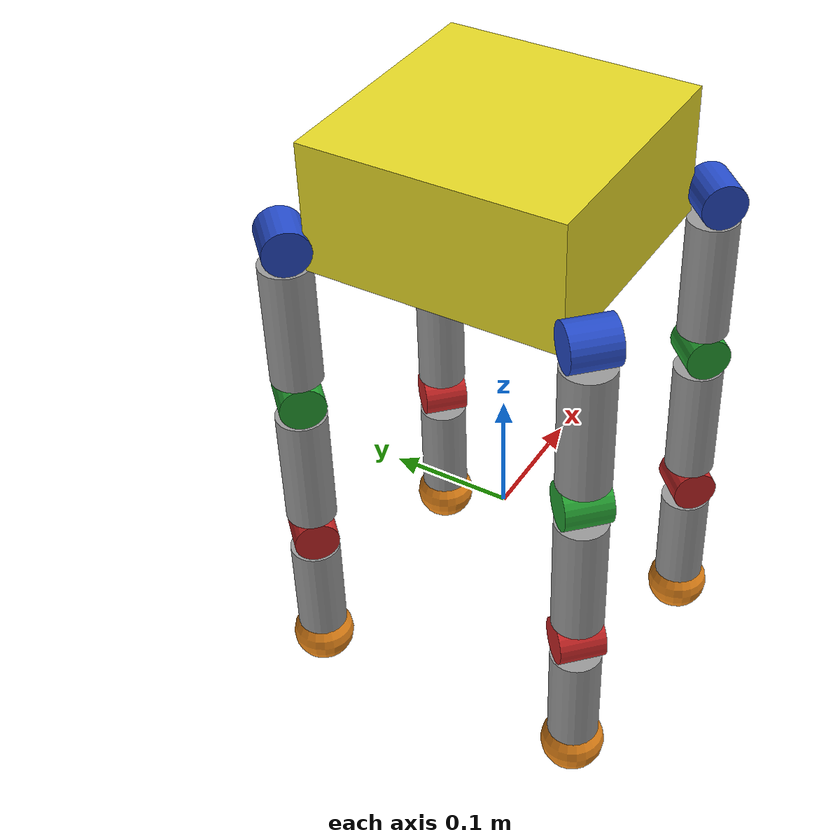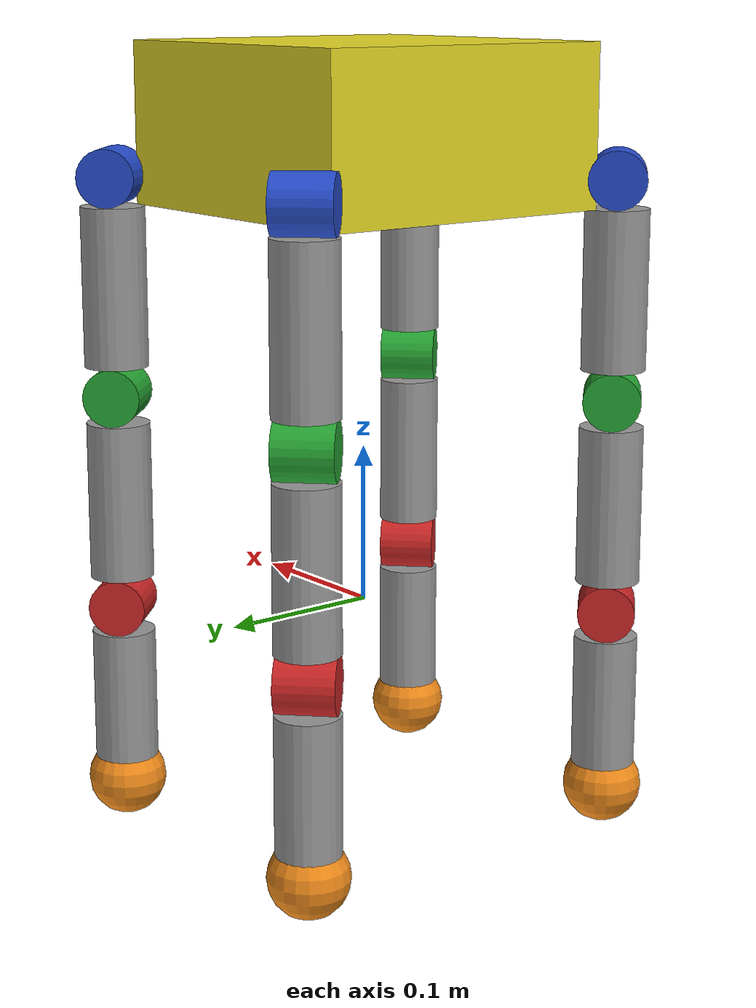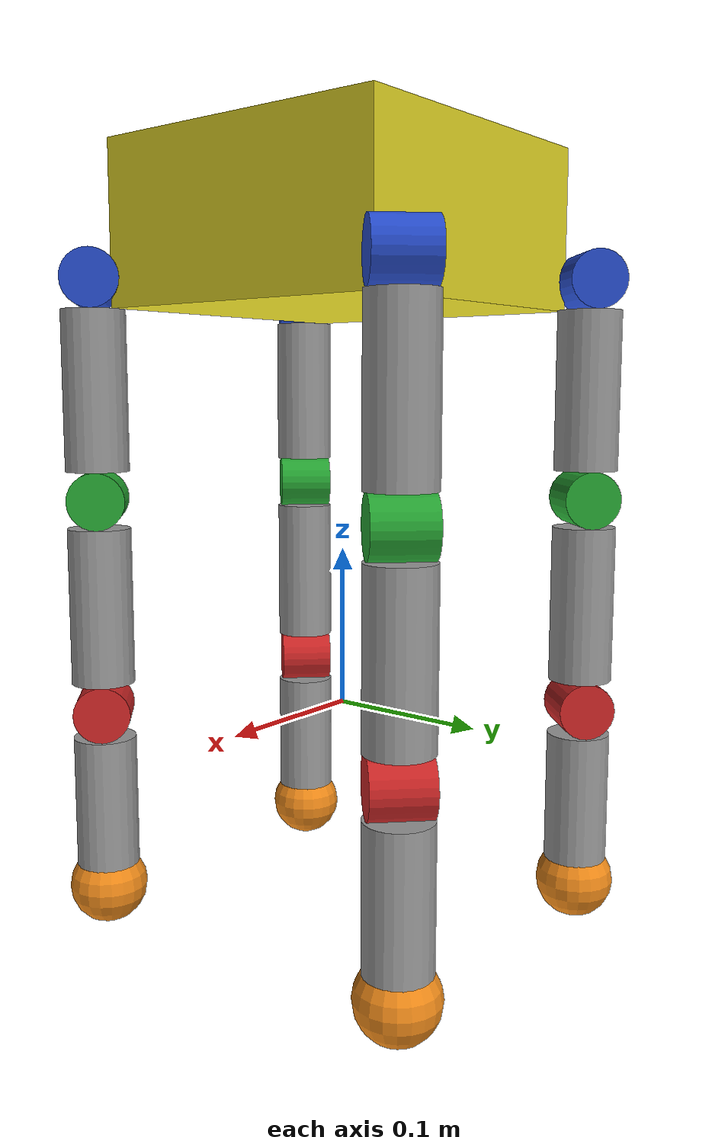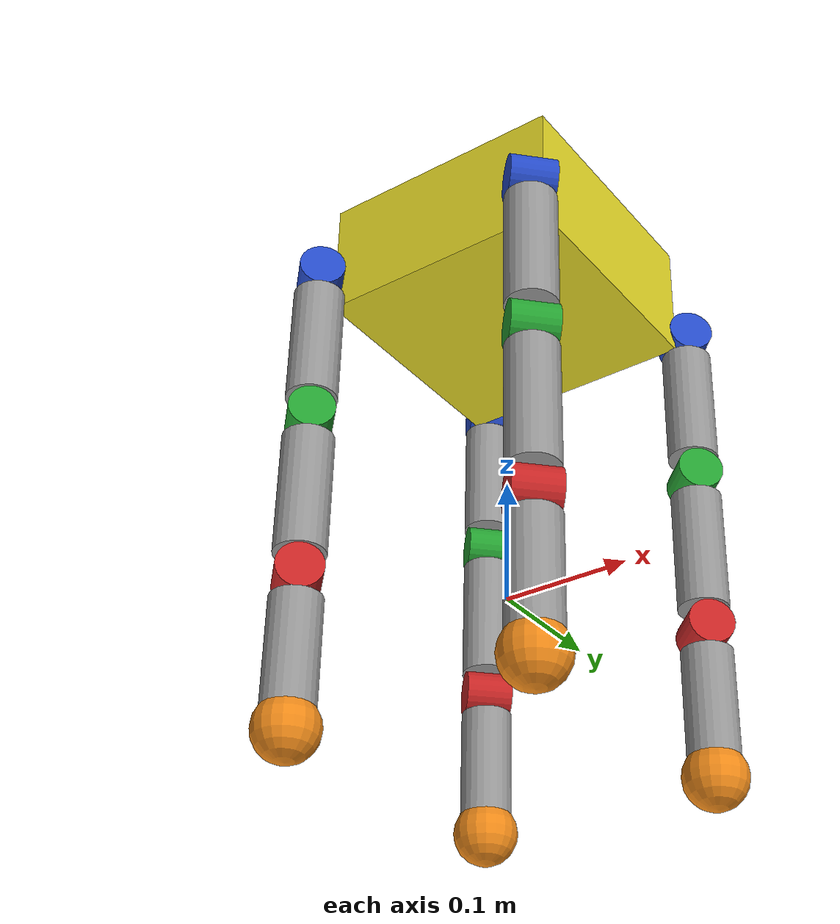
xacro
<?xml version="1.0"?>
<robot name="crawler" xmlns:xacro="http://ros.org/wiki/xacro">

  <!-- ======= Parameters ======= -->

  <!-- Trunk dimensions -->
  <xacro:property name="body_x" value="0.20"/>
  <xacro:property name="body_y" value="0.20"/>
  <xacro:property name="body_z" value="0.10"/>

  <!-- Leg geometry -->
  <xacro:property name="joint_len"  value="0.036"/>   <!-- hip cylinder length -->
  <xacro:property name="joint_rad"  value="0.018"/>  <!-- hip cylinder radius -->

  <xacro:property name="link_1_len" value="0.10"/>
  <xacro:property name="link_1_rad" value="0.020"/>

  <xacro:property name="link_2_len" value="0.10"/>
  <xacro:property name="link_2_rad" value="0.020"/>

  <xacro:property name="link_3_len" value="0.10"/>
  <xacro:property name="link_3_rad" value="0.020"/>

  <xacro:property name="foot_rad" value="0.025"/>

  <!-- Mounting offsets -->
    <xacro:property name="joint_clear_y" value="${joint_rad}"/>   <!-- move hip outside trunk side -->
  <xacro:property name="joint_drop_z"  value="${joint_rad}"/>   <!-- move hip below trunk -->

  <!-- Knee joint lateral offset (outward) -->
    <xacro:property name="knee_clear_y" value="0.05"/>
  <!-- Knee joint fore/aft offset (to mimic side-mounted joint brackets as in example) -->
    <xacro:property name="knee_fwd_x" value="0.02"/>

  <!-- Simple masses -->
  <xacro:property name="m_trunk" value="1.0"/>
  <xacro:property name="m_joint"   value="0.25"/>
  <xacro:property name="m_link_1" value="0.35"/>
  <xacro:property name="m_link_2" value="0.25"/>
  <xacro:property name="m_link_3" value="0.25"/>
  <xacro:property name="m_foot"  value="0.05"/>

  <!-- Convenience -->
  <xacro:macro name="inertial_box" params="m x y z">
    <inertial>
      <origin xyz="0 0 0" rpy="0 0 0"/>
      <mass value="${m}"/>
      <!-- crude diagonal inertia, good enough for sim bringup -->
      <inertia
        ixx="${m*(y*y+z*z)/12.0}"
        iyy="${m*(x*x+z*z)/12.0}"
        izz="${m*(x*x+y*y)/12.0}"
        ixy="0" ixz="0" iyz="0"/>
    </inertial>
  </xacro:macro>

  <xacro:macro name="inertial_cyl" params="m r l axis">
    <!-- axis: 'z' assumes cylinder axis is z in link frame -->
    <inertial>
      <origin xyz="0 0 0" rpy="0 0 0"/>
      <mass value="${m}"/>
      <!-- Approx inertia for solid cylinder along z -->
      <inertia
        ixx="${m*(3*r*r + l*l)/12.0}"
        iyy="${m*(3*r*r + l*l)/12.0}"
        izz="${m*(r*r)/2.0}"
        ixy="0" ixz="0" iyz="0"/>
    </inertial>
  </xacro:macro>

  <!-- ======= Base / Trunk ======= -->
  <link name="base_link"/>

  <link name="trunk">
    <visual>
      <origin xyz="0 0 0" rpy="0 0 0"/>
      <geometry><box size="${body_x} ${body_y} ${body_z}"/></geometry>
    </visual>
    <collision>
      <origin xyz="0 0 0" rpy="0 0 0"/>
      <geometry><box size="${body_x} ${body_y} ${body_z}"/></geometry>
    </collision>
    <xacro:inertial_box m="${m_trunk}" x="${body_x}" y="${body_y}" z="${body_z}"/>
  </link>

  <joint name="base_to_trunk" type="fixed">
    <parent link="base_link"/>
    <child link="trunk"/>
    <origin xyz="0 0 0.30" rpy="0 0 0"/>
  </joint>

  <gazebo reference="trunk">
    <material>Gazebo/Yellow</material>
      <mu1>150.01</mu1>
      <mu2>150.01</mu2>
  </gazebo>

  <!-- ======= Leg macro ======= -->
  <!-- side = 'l' or 'r' determines y sign; end = 'f' or 'h' determines x sign -->
  <xacro:macro name="leg3dof" params="leg xsign ysign">
    <!-- Mount point at trunk corner, then moved OUTWARD (y) and DOWN (z) -->
    <xacro:property name="x_mount" value="${xsign * body_x/2.0}"/>
    <xacro:property name="y_mount" value="${ysign * (body_y/2.0 + joint_clear_y)}"/>
    <xacro:property name="z_mount" value="${-(body_z/2.0 - joint_drop_z)}"/>

    <!-- Hip link: cylinder "housing" -->
    <link name="${leg}_joint_cyl_1">
      <visual>
        <!-- rotate cylinder so its axis aligns with +X -->
        <origin xyz="0 0 0" rpy="0 ${pi/2} ${-xsign*ysign*pi/4}"/>
        <geometry><cylinder radius="${joint_rad}" length="${joint_len}"/></geometry>
      </visual>
      <collision>
        <origin xyz="0 0 0" rpy="0 ${pi/2} ${-xsign*ysign*pi/4}"/>
        <geometry><cylinder radius="${joint_rad}" length="${joint_len}"/></geometry>
      </collision>
      <!-- inertia computed in link frame (cyl along z), but we're rotating visual/collision only; good enough -->
      <xacro:inertial_cyl m="${m_joint}" r="${joint_rad}" l="${joint_len}" axis="z"/>
    </link>

    <joint name="${leg}_joint_1" type="revolute">
      <parent link="trunk"/>
      <child link="${leg}_joint_cyl_1"/>
      <origin xyz="${x_mount} ${y_mount} ${z_mount}" rpy="0 0 0"/>
      <!-- ab/ad around X -->
      <axis xyz="${ysign} ${-xsign} 0"/>
      <limit lower="-1.3" upper="1.3" effort="50" velocity="6.0"/>
      <dynamics damping="0.5" friction="0.01"/>
    </joint>

    <!-- Thigh Link: cylinder -->
    <link name="${leg}_link_1">
      <visual>
        <!-- rotate cylinder so its axis aligns with +X -->
        <origin xyz="0 0 0" rpy="0 0 0"/>
        <geometry><cylinder radius="${link_1_rad}" length="${link_1_len}"/></geometry>
      </visual>
      <collision>
        <origin xyz="0 0 0" rpy="0 0 0"/>
        <geometry><cylinder radius="${link_1_rad}" length="${link_1_len}"/></geometry>
      </collision>
      <!-- inertia computed in link frame (cyl along z), but we're rotating visual/collision only; good enough -->
      <xacro:inertial_cyl m="${m_link_1}" r="${link_1_rad}" l="${link_1_len}" axis="z"/>
    </link>

    <joint name="${leg}_joint_1_link_1" type="fixed">
      <parent link="${leg}_joint_cyl_1"/>
      <child link="${leg}_link_1"/>
      <origin xyz="0 0 ${-joint_drop_z - (link_1_len/2.0)}" rpy="0 0 0"/>
    </joint>

    <!-- Hip pitch: cylinder "housing" -->
    <link name="${leg}_joint_cyl_2">
      <visual>
        <!-- rotate cylinder so its axis aligns with +X -->
        <origin xyz="0 0 0" rpy="0 ${pi/2} ${-xsign*ysign*pi/4}"/>
        <geometry><cylinder radius="${joint_rad}" length="${joint_len}"/></geometry>
      </visual>
      <collision>
        <origin xyz="0 0 0" rpy="0 ${pi/2} ${-xsign*ysign*pi/4}"/>
        <geometry><cylinder radius="${joint_rad}" length="${joint_len}"/></geometry>
      </collision>
      <!-- inertia computed in link frame (cyl along z), but we're rotating visual/collision only; good enough -->
      <xacro:inertial_cyl m="${m_joint}" r="${joint_rad}" l="${joint_len}" axis="z"/>
    </link>

    <joint name="${leg}_joint_2" type="revolute">
      <parent link="${leg}_link_1"/>
      <child link="${leg}_joint_cyl_2"/>
      <origin xyz="0.0 0.0 ${-joint_drop_z - (link_1_len/2.0)}" rpy="0 0 0"/>
      <!-- ab/ad around X -->
      <axis xyz="${ysign} ${-xsign} 0"/>
      <limit lower="-1.7" upper="1.7" effort="50" velocity="6.0"/>
      <dynamics damping="0.5" friction="0.01"/>
    </joint>

    <!-- Thigh Link: cylinder -->
    <link name="${leg}_link_2">
      <visual>
        <!-- rotate cylinder so its axis aligns with +X -->
        <origin xyz="0 0 0" rpy="0 0 0"/>
        <geometry><cylinder radius="${link_2_rad}" length="${link_2_len}"/></geometry>
      </visual>
      <collision>
        <origin xyz="0 0 0" rpy="0 0 0"/>
        <geometry><cylinder radius="${link_2_rad}" length="${link_2_len}"/></geometry>
      </collision>
      <!-- inertia computed in link frame (cyl along z), but we're rotating visual/collision only; good enough -->
      <xacro:inertial_cyl m="${m_link_2}" r="${link_2_rad}" l="${link_2_len}" axis="z"/>
    </link>

    <joint name="${leg}_joint_2_link_2" type="fixed">
      <parent link="${leg}_joint_cyl_2"/>
      <child link="${leg}_link_2"/>
      <origin xyz="0 0 ${-joint_drop_z - (link_2_len/2.0)}" rpy="0 0 0"/>
    </joint>

    <!-- Knee pitch: cylinder "housing" -->
    <link name="${leg}_joint_cyl_3">
      <visual>
        <!-- rotate cylinder so its axis aligns with +X -->
        <origin xyz="0 0 0" rpy="0 ${pi/2} ${-xsign*ysign*pi/4}"/>
        <geometry><cylinder radius="${joint_rad}" length="${joint_len}"/></geometry>
      </visual>
      <collision>
        <origin xyz="0 0 0" rpy="0 ${pi/2} ${-xsign*ysign*pi/4}"/>
        <geometry><cylinder radius="${joint_rad}" length="${joint_len}"/></geometry>
      </collision>
      <!-- inertia computed in link frame (cyl along z), but we're rotating visual/collision only; good enough -->
      <xacro:inertial_cyl m="${m_joint}" r="${joint_rad}" l="${joint_len}" axis="z"/>
    </link>

    <joint name="${leg}_joint_3" type="revolute">
      <parent link="${leg}_link_2"/>
      <child link="${leg}_joint_cyl_3"/>
      <origin xyz="0.0 0.0 ${-joint_drop_z - (link_1_len/2.0)}" rpy="0 0 0"/>
      <!-- ab/ad around X -->
      <axis xyz="${ysign} ${-xsign} 0"/>
      <limit lower="-1.7" upper="1.7" effort="50" velocity="6.0"/>
      <dynamics damping="0.5" friction="0.01"/>
    </joint>

    <!-- Thigh Link: cylinder -->
    <link name="${leg}_link_3">
      <visual>
        <!-- rotate cylinder so its axis aligns with +X -->
        <origin xyz="0 0 0" rpy="0 0 0"/>
        <geometry><cylinder radius="${link_3_rad}" length="${link_3_len}"/></geometry>
      </visual>
      <collision>
        <origin xyz="0 0 0" rpy="0 0 0"/>
        <geometry><cylinder radius="${link_3_rad}" length="${link_3_len}"/></geometry>
      </collision>
      <!-- inertia computed in link frame (cyl along z), but we're rotating visual/collision only; good enough -->
      <xacro:inertial_cyl m="${m_link_3}" r="${link_3_rad}" l="${link_3_len}" axis="z"/>
    </link>

    <joint name="${leg}_joint_3_link_3" type="fixed">
      <parent link="${leg}_joint_cyl_3"/>
      <child link="${leg}_link_3"/>
      <origin xyz="0 0 ${-joint_drop_z - (link_2_len/2.0)}" rpy="0 0 0"/>
    </joint>

    <!-- Foot -->
    <link name="${leg}_foot">
      <visual>
        <origin xyz="0 0 0" rpy="0 0 0"/>
        <geometry><sphere radius="${foot_rad}"/></geometry>
      </visual>
      <collision>
        <origin xyz="0 0 0" rpy="0 0 0"/>
        <geometry><sphere radius="${foot_rad}"/></geometry>
      </collision>
      <inertial>
        <origin xyz="0 0 0" rpy="0 0 0"/>
        <mass value="${m_foot}"/>
        <inertia ixx="1e-5" iyy="1e-5" izz="1e-5" ixy="0" ixz="0" iyz="0"/>
      </inertial>
    </link>

    <joint name="${leg}_ankle_fixed" type="fixed">
      <parent link="${leg}_link_3"/>
      <child link="${leg}_foot"/>
      <origin xyz="0 0 ${-link_3_len/2}" rpy="0 0 0"/>
    </joint>

    <gazebo reference="${leg}_joint_cyl_1">
      <material>Gazebo/Blue</material>
        <mu1>10.01</mu1>
        <mu2>1.01</mu2>
    </gazebo>

    <gazebo reference="${leg}_joint_cyl_2">
      <material>Gazebo/Green</material>
        <mu1>10.01</mu1>
        <mu2>1.01</mu2>
    </gazebo>
    <gazebo reference="${leg}_joint_cyl_3">
      <material>Gazebo/Red</material>
        <mu1>10.01</mu1>
        <mu2>1.01</mu2>
    </gazebo>
    <gazebo reference="${leg}_link_1">
      <material>Gazebo/Grey</material>
        <mu1>10.01</mu1>
        <mu2>1.01</mu2>
    </gazebo>
    <gazebo reference="${leg}_link_2">
      <material>Gazebo/Grey</material>
        <mu1>10.01</mu1>
        <mu2>1.01</mu2>
    </gazebo>
    <gazebo reference="${leg}_link_3">
      <material>Gazebo/Grey</material>
        <mu1>10.01</mu1>
        <mu2>1.01</mu2>
    </gazebo>
    <gazebo reference="${leg}_foot">
      <material>Gazebo/Orange</material>
        <mu1>10.01</mu1>
        <mu2>1.01</mu2>
    </gazebo>
  </xacro:macro>

  <!-- 4 legs -->
  <xacro:leg3dof leg="lf" xsign="1"  ysign="1"/>
  <xacro:leg3dof leg="rf" xsign="1"  ysign="-1"/>
  <xacro:leg3dof leg="lh" xsign="-1" ysign="1"/>
  <xacro:leg3dof leg="rh" xsign="-1" ysign="-1"/>

  <!-- ======= ros2_control ======= -->
  <ros2_control name="gz_sim_system" type="system">
    <hardware>
      <plugin>gz_ros2_control/GazeboSimSystem</plugin>
    </hardware>

    <!-- Declare command/state interfaces for each actuated joint -->
    <joint name="lf_joint_1">
      <command_interface name="position"/>
      <state_interface name="position"/>
      <state_interface name="velocity"/>
    </joint>

    <joint name="rf_joint_1">
      <command_interface name="position"/>
      <state_interface name="position"/>
      <state_interface name="velocity"/>
    </joint>

    <joint name="lh_joint_1">
      <command_interface name="position"/>
      <state_interface name="position"/>
      <state_interface name="velocity"/>
    </joint>

    <joint name="rh_joint_1">
      <command_interface name="position"/>
      <state_interface name="position"/>
      <state_interface name="velocity"/>
    </joint>

    <joint name="lf_joint_2">
      <command_interface name="position"/>
      <state_interface name="position"/>
      <state_interface name="velocity"/>
    </joint>

    <joint name="rf_joint_2">
      <command_interface name="position"/>
      <state_interface name="position"/>
      <state_interface name="velocity"/>
    </joint>

    <joint name="lh_joint_2">
      <command_interface name="position"/>
      <state_interface name="position"/>
      <state_interface name="velocity"/>
    </joint>

    <joint name="rh_joint_2">
      <command_interface name="position"/>
      <state_interface name="position"/>
      <state_interface name="velocity"/>
    </joint>

    <joint name="lf_joint_3">
      <command_interface name="position"/>
      <state_interface name="position"/>
      <state_interface name="velocity"/>
    </joint>

    <joint name="rf_joint_3">
      <command_interface name="position"/>
      <state_interface name="position"/>
      <state_interface name="velocity"/>
    </joint>

    <joint name="lh_joint_3">
      <command_interface name="position"/>
      <state_interface name="position"/>
      <state_interface name="velocity"/>
    </joint>

    <joint name="rh_joint_3">
      <command_interface name="position"/>
      <state_interface name="position"/>
      <state_interface name="velocity"/>
    </joint>
  </ros2_control>

  <!-- ======= gz-sim plugin (NOT Gazebo Classic) ======= -->
  <gazebo>
    <plugin filename="libgz_ros2_control-system.so"
            name="gz_ros2_control::GazeboSimROS2ControlPlugin">
      <parameters>/ros_ws/src/biorobotics_tutorial/models/config/crawler_quadruped_config.yaml</parameters>
    </plugin>
  </gazebo>

</robot>
